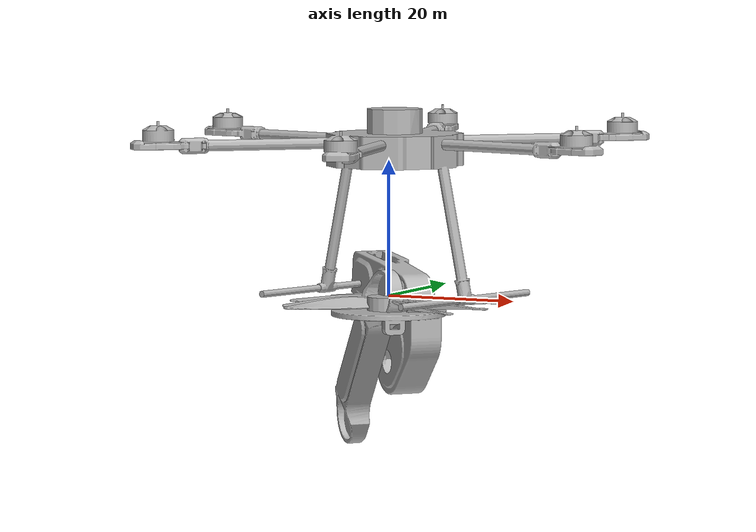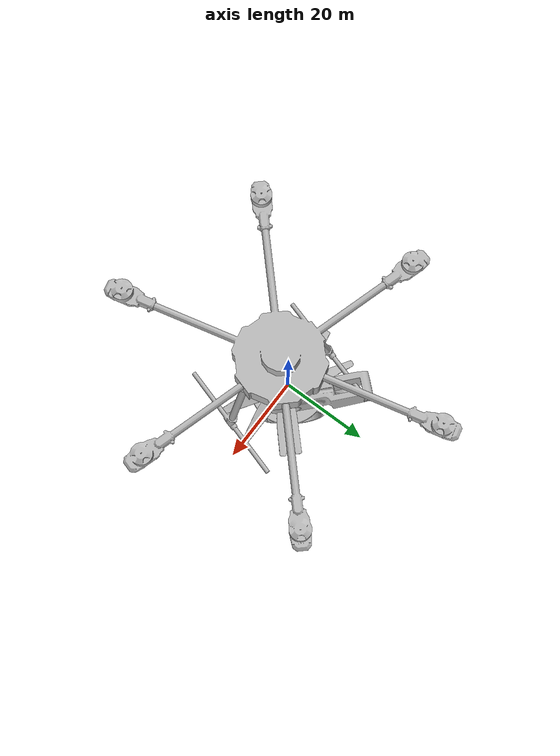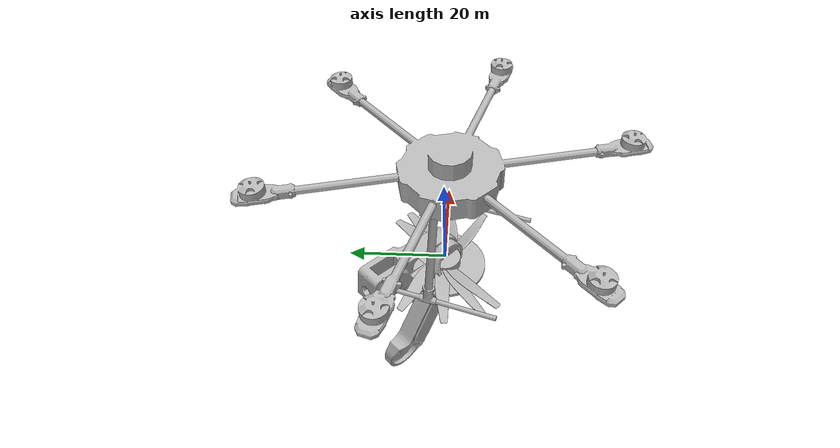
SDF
<sdf version='1.7'>
  <model name='uamv0'>
    <link name='base_link'>
      <inertial>
        <pose>0.001663 0.002295 4.1e-05 0 -0 0</pose>
        <mass>6.30843</mass>
        <inertia>
          <ixx>0.054937</ixx>
          <ixy>-2.27529e-06</ixy>
          <ixz>6.72062e-07</ixz>
          <iyy>0.0921712</iyy>
          <iyz>-4.49306e-07</iyz>
          <izz>0.0552674</izz>
        </inertia>
      </inertial>
      <collision name='base_link_collision'>
        <pose>0 0 0 0 -0 0</pose>
        <geometry>
          <mesh>
            <scale>100 100 100</scale>
            <uri>model://uamv0_description/meshes/base_link.STL</uri>
          </mesh>
        </geometry>
      </collision>
      <visual name='base_link_visual'>
        <pose>0 0 0 0 -0 0</pose>
        <geometry>
          <mesh>
            <scale>100 100 100</scale>
            <uri>model://uamv0_description/meshes/base_link.STL</uri>
          </mesh>
        </geometry>
      </visual>
    </link>
    <joint name='manip_base' type='revolute'>
      <pose relative_to='base_link'>0 0 -0.09398 -1.5708 -0 -2.3131</pose>
      <parent>base_link</parent>
      <child>Manip_base_link</child>
      <axis>
        <xyz>0 1 0</xyz>
        <limit>
          <lower>-1e+16</lower>
          <upper>1e+16</upper>
        </limit>
        <dynamics>
          <spring_reference>0</spring_reference>
          <spring_stiffness>0</spring_stiffness>
        </dynamics>
      </axis>
    </joint>
    <link name='Manip_base_link'>
      <pose relative_to='manip_base'>0 0 0 0 -0 0</pose>
      <inertial>
        <pose>-0.014884 0.055311 -0.0044 0 -0 0</pose>
        <mass>0.589826</mass>
        <inertia>
          <ixx>0.00187518</ixx>
          <ixy>0.000235041</ixy>
          <ixz>-5.03554e-05</ixz>
          <iyy>0.00140262</iyy>
          <iyz>0.000210556</iyz>
          <izz>0.00146402</izz>
        </inertia>
      </inertial>
      <collision name='Manip_base_link_collision'>
        <pose>0 0 0 0 -0 0</pose>
        <geometry>
          <mesh>
            <scale>100 100 100</scale>
            <uri>model://uamv0_description/meshes/Manip_base_link.STL</uri>
          </mesh>
        </geometry>
      </collision>
      <visual name='Manip_base_link_visual'>
        <pose>0 0 0 0 -0 0</pose>
        <geometry>
          <mesh>
            <scale>100 100 100</scale>
            <uri>model://uamv0_description/meshes/Manip_base_link.STL</uri>
          </mesh>
        </geometry>
      </visual>
    </link>
    <joint name='inter' type='revolute'>
      <pose relative_to='Manip_base_link'>0 0.10055 -0.027837 1.5708 -0.95138 1.5708</pose>
      <parent>Manip_base_link</parent>
      <child>Inter_link</child>
      <axis>
        <xyz>0 0 1</xyz>
        <limit>
          <lower>-1</lower>
          <upper>1</upper>
          <effort>0</effort>
          <velocity>0</velocity>
        </limit>
        <dynamics>
          <spring_reference>0</spring_reference>
          <spring_stiffness>0</spring_stiffness>
        </dynamics>
      </axis>
    </joint>
    <link name='Inter_link'>
      <pose relative_to='inter'>0 0 0 0 -0 0</pose>
      <inertial>
        <pose>-8e-06 -0.120107 0.008724 0 -0 0</pose>
        <mass>0.448594</mass>
        <inertia>
          <ixx>0.00301348</ixx>
          <ixy>-2.14028e-07</ixy>
          <ixz>2.95795e-08</ixz>
          <iyy>0.000232636</iyy>
          <iyz>-2.61208e-08</iyz>
          <izz>0.00310391</izz>
        </inertia>
      </inertial>
      <collision name='Inter_link_collision'>
        <pose>0 0 0 0 -0 0</pose>
        <geometry>
          <mesh>
            <scale>100 100 100</scale>
            <uri>model://uamv0_description/meshes/Inter_link.STL</uri>
          </mesh>
        </geometry>
      </collision>
      <visual name='Inter_link_visual'>
        <pose>0 0 0 0 -0 0</pose>
        <geometry>
          <mesh>
            <scale>100 100 100</scale>
            <uri>model://uamv0_description/meshes/Inter_link.STL</uri>
          </mesh>
        </geometry>
      </visual>
    </link>
    <joint name='end' type='revolute'>
      <pose relative_to='Inter_link'>0 -0.24 0 0 -0 2.0574</pose>
      <parent>Inter_link</parent>
      <child>End_link</child>
      <axis>
        <xyz>0 0 1</xyz>
        <limit>
          <lower>-1</lower>
          <upper>1</upper>
          <effort>0</effort>
          <velocity>0</velocity>
        </limit>
        <dynamics>
          <spring_reference>0</spring_reference>
          <spring_stiffness>0</spring_stiffness>
        </dynamics>
      </axis>
    </joint>
    <link name='End_link'>
      <pose relative_to='end'>0 0 0 0 -0 0</pose>
      <inertial>
        <pose>-7.3e-05 0.076193 -0.03834 0 -0 0</pose>
        <mass>0.455517</mass>
        <inertia>
          <ixx>0.00203567</ixx>
          <ixy>3.36412e-06</ixy>
          <ixz>8.97115e-08</ixz>
          <iyy>0.000353093</iyy>
          <iyz>-2.96333e-05</iyz>
          <izz>0.0021476</izz>
        </inertia>
      </inertial>
      <collision name='End_link_collision'>
        <pose>0 0 0 0 -0 0</pose>
        <geometry>
          <mesh>
            <scale>100 100 100</scale>
            <uri>model://uamv0_description/meshes/End_link.STL</uri>
          </mesh>
        </geometry>
      </collision>
      <visual name='End_link_visual'>
        <pose>0 0 0 0 -0 0</pose>
        <geometry>
          <mesh>
            <scale>100 100 100</scale>
            <uri>model://uamv0_description/meshes/End_link.STL</uri>
          </mesh>
        </geometry>
      </visual>
    </link>
    <joint name='prop1' type='revolute'>
      <pose relative_to='base_link'>0 0.3048 -0.028957 -1.5708 -0 -0.99636</pose>
      <parent>base_link</parent>
      <child>Prop1_link</child>
      <axis>
        <xyz>0 1 0</xyz>
        <limit>
          <lower>-1e+16</lower>
          <upper>1e+16</upper>
        </limit>
        <dynamics>
          <spring_reference>0</spring_reference>
          <spring_stiffness>0</spring_stiffness>
        </dynamics>
      </axis>
    </joint>
    <link name='Prop1_link'>
      <pose relative_to='prop1'>0 0 0 0 -0 0</pose>
      <inertial>
        <pose>-0 0.012832 0 0 -0 0</pose>
        <mass>0.0295952</mass>
        <inertia>
          <ixx>0.000164359</ixx>
          <ixy>2.39694e-19</ixy>
          <ixz>-1.07447e-05</ixz>
          <iyy>0.000166384</iyy>
          <iyz>-1.70059e-18</iyz>
          <izz>2.76701e-06</izz>
        </inertia>
      </inertial>
      <collision name='Prop1_link_collision'>
        <pose>0 0 0 0 -0 0</pose>
        <geometry>
          <mesh>
            <scale>100 100 100</scale>
            <uri>model://uamv0_description/meshes/Prop1_link.STL</uri>
          </mesh>
        </geometry>
      </collision>
      <visual name='Prop1_link_visual'>
        <pose>0 0 0 0 -0 0</pose>
        <geometry>
          <mesh>
            <scale>100 100 100</scale>
            <uri>model://uamv0_description/meshes/Prop1_link.STL</uri>
          </mesh>
        </geometry>
      </visual>
    </link>
    <joint name='prop2' type='revolute'>
      <pose relative_to='base_link'>-0.3048 0 -0.028957 -1.5708 -0 -0.77151</pose>
      <parent>base_link</parent>
      <child>Prop2_link</child>
      <axis>
        <xyz>0 1 0</xyz>
        <limit>
          <lower>-1e+16</lower>
          <upper>1e+16</upper>
        </limit>
        <dynamics>
          <spring_reference>0</spring_reference>
          <spring_stiffness>0</spring_stiffness>
        </dynamics>
      </axis>
    </joint>
    <link name='Prop2_link'>
      <pose relative_to='prop2'>0 0 0 0 -0 0</pose>
      <inertial>
        <pose>0 0.012832 0 0 -0 0</pose>
        <mass>0.0295952</mass>
        <inertia>
          <ixx>0.000164359</ixx>
          <ixy>4.84258e-19</ixy>
          <ixz>-1.07447e-05</ixz>
          <iyy>0.000166384</iyy>
          <iyz>-1.23892e-18</iyz>
          <izz>2.76701e-06</izz>
        </inertia>
      </inertial>
      <collision name='Prop2_link_collision'>
        <pose>0 0 0 0 -0 0</pose>
        <geometry>
          <mesh>
            <scale>100 100 100</scale>
            <uri>model://uamv0_description/meshes/Prop2_link.STL</uri>
          </mesh>
        </geometry>
      </collision>
      <visual name='Prop2_link_visual'>
        <pose>0 0 0 0 -0 0</pose>
        <geometry>
          <mesh>
            <scale>100 100 100</scale>
            <uri>model://uamv0_description/meshes/Prop2_link.STL</uri>
          </mesh>
        </geometry>
      </visual>
    </link>
    <joint name='prop3' type='revolute'>
      <pose relative_to='base_link'>0 -0.3048 -0.028957 -1.5708 0 1.6037</pose>
      <parent>base_link</parent>
      <child>Prop3_link</child>
      <axis>
        <xyz>0 1 0</xyz>
        <limit>
          <lower>-1e+16</lower>
          <upper>1e+16</upper>
        </limit>
        <dynamics>
          <spring_reference>0</spring_reference>
          <spring_stiffness>0</spring_stiffness>
        </dynamics>
      </axis>
    </joint>
    <link name='Prop3_link'>
      <pose relative_to='prop3'>0 0 0 0 -0 0</pose>
      <inertial>
        <pose>0 0.012832 -0 0 -0 0</pose>
        <mass>0.0295952</mass>
        <inertia>
          <ixx>0.000164359</ixx>
          <ixy>-4.24513e-18</ixy>
          <ixz>-1.07447e-05</ixz>
          <iyy>0.000166384</iyy>
          <iyz>-5.201e-17</iyz>
          <izz>2.76701e-06</izz>
        </inertia>
      </inertial>
      <collision name='Prop3_link_collision'>
        <pose>0 0 0 0 -0 0</pose>
        <geometry>
          <mesh>
            <scale>100 100 100</scale>
            <uri>model://uamv0_description/meshes/Prop3_link.STL</uri>
          </mesh>
        </geometry>
      </collision>
      <visual name='Prop3_link_visual'>
        <pose>0 0 0 0 -0 0</pose>
        <geometry>
          <mesh>
            <scale>100 100 100</scale>
            <uri>model://uamv0_description/meshes/Prop3_link.STL</uri>
          </mesh>
        </geometry>
      </visual>
    </link>
    <joint name='prop4' type='revolute'>
      <pose relative_to='base_link'>0.3048 0 -0.028957 -1.5708 -0 1.0336</pose>
      <parent>base_link</parent>
      <child>Prop4_link</child>
      <axis>
        <xyz>0 1 0</xyz>
        <limit>
          <lower>-1e+16</lower>
          <upper>1e+16</upper>
        </limit>
        <dynamics>
          <spring_reference>0</spring_reference>
          <spring_stiffness>0</spring_stiffness>
        </dynamics>
      </axis>
    </joint>
    <link name='Prop4_link'>
      <pose relative_to='prop4'>0 0 0 0 -0 0</pose>
      <inertial>
        <pose>0 0.012832 0 0 -0 0</pose>
        <mass>0.0295952</mass>
        <inertia>
          <ixx>0.000164359</ixx>
          <ixy>9.14572e-19</ixy>
          <ixz>-1.07447e-05</ixz>
          <iyy>0.000166384</iyy>
          <iyz>-2.56373e-18</iyz>
          <izz>2.76701e-06</izz>
        </inertia>
      </inertial>
      <collision name='Prop4_link_collision'>
        <pose>0 0 0 0 -0 0</pose>
        <geometry>
          <mesh>
            <scale>100 100 100</scale>
            <uri>model://uamv0_description/meshes/Prop4_link.STL</uri>
          </mesh>
        </geometry>
      </collision>
      <visual name='Prop4_link_visual'>
        <pose>0 0 0 0 -0 0</pose>
        <geometry>
          <mesh>
            <scale>100 100 100</scale>
            <uri>model://uamv0_description/meshes/Prop4_link.STL</uri>
          </mesh>
        </geometry>
      </visual>
    </link>
  </model>
</sdf>
